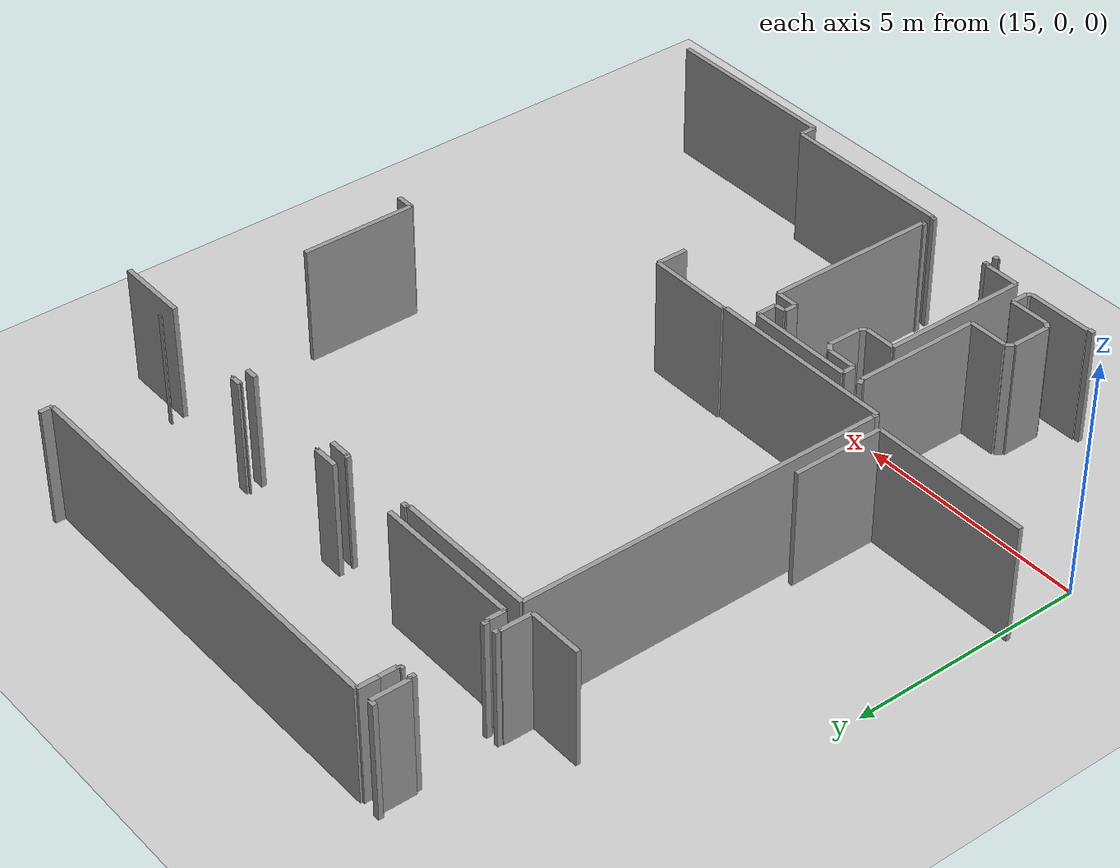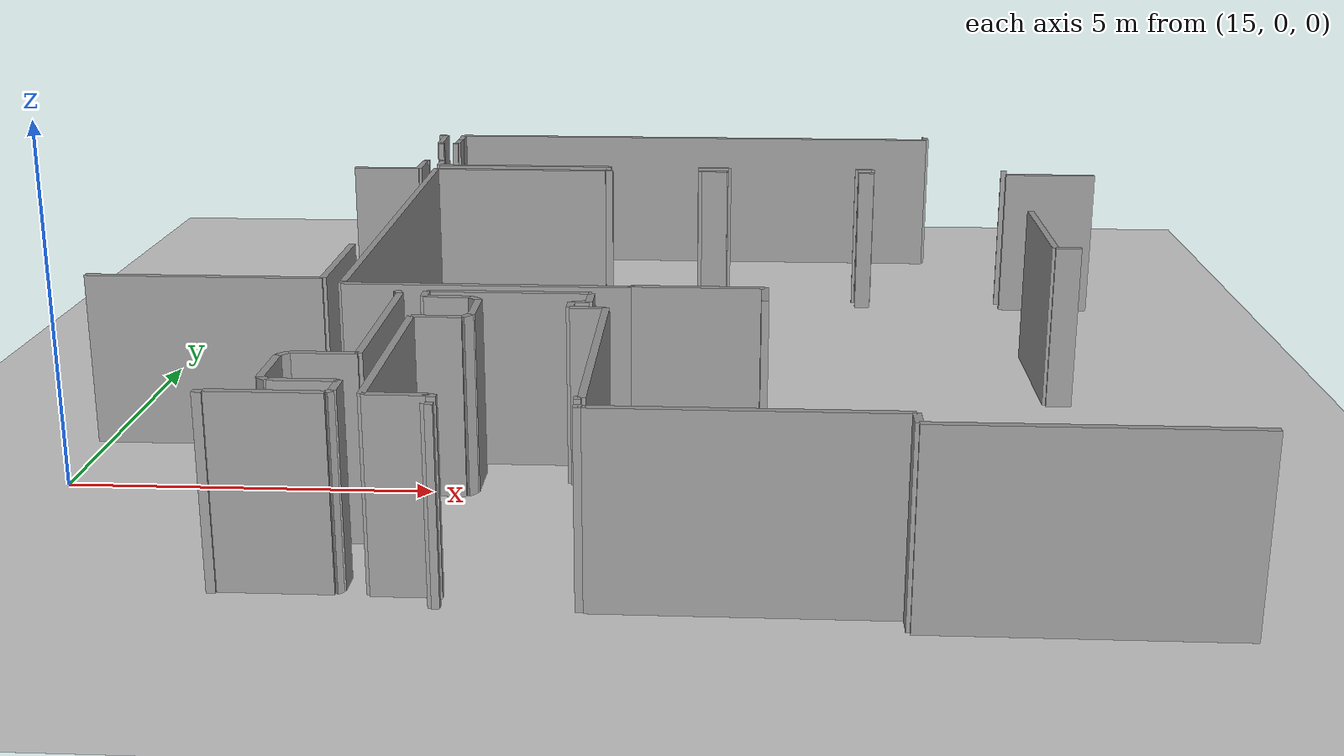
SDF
<sdf version="1.6">
 <world name="default">
  <model name="ground_plane">
   <static>1</static>
   <link name="link">
    <collision name="collision">
     <geometry><plane><normal>0 0 1</normal><size>100 100</size></plane></geometry>
     <surface><friction><ode><mu>100</mu><mu2>50</mu2></ode></friction></surface>
    </collision>
    <visual name="visual">
     <cast_shadows>0</cast_shadows>
     <geometry><plane><normal>0 0 1</normal><size>100 100</size></plane></geometry>
     <material>
      <script><uri>file://media/materials/scripts/gazebo.material</uri><name>Gazebo/Grey</name></script>
     </material>
    </visual>
   </link>
  </model>
  <model name="0510032261_A_40_1_103">
   <static>1</static>
   <link name="Wall_413">
    <collision name="Wall_413_Collision">
     <geometry><box><size>0.13710292249 0.1 2.5</size></box></geometry>
     <pose>0.0685514612452 0 1.25 0 0 0</pose>
    </collision>
    <visual name="Wall_413_Visual">
     <pose>0.0685514612452 0 1.25 0 0 0</pose>
     <geometry><box><size>0.13710292249 0.1 2.5</size></box></geometry>
     <material>
      <script><uri>file://media/materials/scripts/gazebo.material</uri><name>Gazebo/Grey</name></script>
      <ambient>1 1 1 1</ambient>
     </material>
    </visual>
    <pose>67.2287166455 -4.0125794155 0 0 0 0.0</pose>
   </link>
   <link name="Wall_414">
    <collision name="Wall_414_Collision">
     <geometry><box><size>0.778271918679 0.1 2.5</size></box></geometry>
     <pose>0.389135959339 0 1.25 0 0 0</pose>
    </collision>
    <visual name="Wall_414_Visual">
     <pose>0.389135959339 0 1.25 0 0 0</pose>
     <geometry><box><size>0.778271918679 0.1 2.5</size></box></geometry>
     <material>
      <script><uri>file://media/materials/scripts/gazebo.material</uri><name>Gazebo/Grey</name></script>
      <ambient>1 1 1 1</ambient>
     </material>
    </visual>
    <pose>67.365819568 -4.0125794155 0 0 0 -1.57079632679</pose>
   </link>
   <link name="Wall_415">
    <collision name="Wall_415_Collision">
     <geometry><box><size>0.0378653113088 0.1 2.5</size></box></geometry>
     <pose>0.0189326556544 0 1.25 0 0 0</pose>
    </collision>
    <visual name="Wall_415_Visual">
     <pose>0.0189326556544 0 1.25 0 0 0</pose>
     <geometry><box><size>0.0378653113088 0.1 2.5</size></box></geometry>
     <material>
      <script><uri>file://media/materials/scripts/gazebo.material</uri><name>Gazebo/Grey</name></script>
      <ambient>1 1 1 1</ambient>
     </material>
    </visual>
    <pose>67.365819568 -4.79085133418 0 0 0 0.0</pose>
   </link>
   <link name="Wall_416">
    <collision name="Wall_416_Collision">
     <geometry><box><size>0.121855146125 0.1 2.5</size></box></geometry>
     <pose>0.0609275730623 0 1.25 0 0 0</pose>
    </collision>
    <visual name="Wall_416_Visual">
     <pose>0.0609275730623 0 1.25 0 0 0</pose>
     <geometry><box><size>0.121855146125 0.1 2.5</size></box></geometry>
     <material>
      <script><uri>file://media/materials/scripts/gazebo.material</uri><name>Gazebo/Grey</name></script>
      <ambient>1 1 1 1</ambient>
     </material>
    </visual>
    <pose>67.4036848793 -4.79085133418 0 0 0 -1.57079632679</pose>
   </link>
   <link name="Wall_417">
    <collision name="Wall_417_Collision">
     <geometry><box><size>0.104701397713 0.1 2.5</size></box></geometry>
     <pose>0.0523506988564 0 1.25 0 0 0</pose>
    </collision>
    <visual name="Wall_417_Visual">
     <pose>0.0523506988564 0 1.25 0 0 0</pose>
     <geometry><box><size>0.104701397713 0.1 2.5</size></box></geometry>
     <material>
      <script><uri>file://media/materials/scripts/gazebo.material</uri><name>Gazebo/Grey</name></script>
      <ambient>1 1 1 1</ambient>
     </material>
    </visual>
    <pose>67.4036848793 -6.45082592122 0 0 0 -1.57079632679</pose>
   </link>
   <link name="Wall_418">
    <collision name="Wall_418_Collision">
     <geometry><box><size>0.0209656925032 0.1 2.5</size></box></geometry>
     <pose>0.0104828462516 0 1.25 0 0 0</pose>
    </collision>
    <visual name="Wall_418_Visual">
     <pose>0.0104828462516 0 1.25 0 0 0</pose>
     <geometry><box><size>0.0209656925032 0.1 2.5</size></box></geometry>
     <material>
      <script><uri>file://media/materials/scripts/gazebo.material</uri><name>Gazebo/Grey</name></script>
      <ambient>1 1 1 1</ambient>
     </material>
    </visual>
    <pose>67.4036848793 -6.55552731893 0 0 0 3.14159265359</pose>
   </link>
   <link name="Wall_419">
    <collision name="Wall_419_Collision">
     <geometry><box><size>0.673697585769 0.1 2.5</size></box></geometry>
     <pose>0.336848792884 0 1.25 0 0 0</pose>
    </collision>
    <visual name="Wall_419_Visual">
     <pose>0.336848792884 0 1.25 0 0 0</pose>
     <geometry><box><size>0.673697585769 0.1 2.5</size></box></geometry>
     <material>
      <script><uri>file://media/materials/scripts/gazebo.material</uri><name>Gazebo/Grey</name></script>
      <ambient>1 1 1 1</ambient>
     </material>
    </visual>
    <pose>67.3827191868 -6.55552731893 0 0 0 -1.57079632679</pose>
   </link>
   <link name="Wall_420">
    <collision name="Wall_420_Collision">
     <geometry><box><size>1.16734434562 0.1 2.5</size></box></geometry>
     <pose>0.583672172808 0 1.25 0 0 0</pose>
    </collision>
    <visual name="Wall_420_Visual">
     <pose>0.583672172808 0 1.25 0 0 0</pose>
     <geometry><box><size>1.16734434562 0.1 2.5</size></box></geometry>
     <material>
      <script><uri>file://media/materials/scripts/gazebo.material</uri><name>Gazebo/Grey</name></script>
      <ambient>1 1 1 1</ambient>
     </material>
    </visual>
    <pose>67.3827191868 -7.2292249047 0 0 0 3.14159265359</pose>
   </link>
   <link name="Wall_423">
    <collision name="Wall_423_Collision">
     <geometry><box><size>1.93888182973 0.1 2.5</size></box></geometry>
     <pose>0.969440914867 0 1.25 0 0 0</pose>
    </collision>
    <visual name="Wall_423_Visual">
     <pose>0.969440914867 0 1.25 0 0 0</pose>
     <geometry><box><size>1.93888182973 0.1 2.5</size></box></geometry>
     <material>
      <script><uri>file://media/materials/scripts/gazebo.material</uri><name>Gazebo/Grey</name></script>
      <ambient>1 1 1 1</ambient>
     </material>
    </visual>
    <pose>67.3772554003 -12.8893265565 0 0 0 -1.57079632679</pose>
   </link>
   <link name="Wall_424">
    <collision name="Wall_424_Collision">
     <geometry><box><size>3.40127064803 0.1 2.5</size></box></geometry>
     <pose>1.70063532402 0 1.25 0 0 0</pose>
    </collision>
    <visual name="Wall_424_Visual">
     <pose>1.70063532402 0 1.25 0 0 0</pose>
     <geometry><box><size>3.40127064803 0.1 2.5</size></box></geometry>
     <material>
      <script><uri>file://media/materials/scripts/gazebo.material</uri><name>Gazebo/Grey</name></script>
      <ambient>1 1 1 1</ambient>
     </material>
    </visual>
    <pose>67.3772554003 -14.8282083863 0 0 0 3.14159265359</pose>
   </link>
   <link name="Wall_432">
    <collision name="Wall_432_Collision">
     <geometry><box><size>0.142682911237 0.1 2.5</size></box></geometry>
     <pose>0.0713414556187 0 1.25 0 0 0</pose>
    </collision>
    <visual name="Wall_432_Visual">
     <pose>0.0713414556187 0 1.25 0 0 0</pose>
     <geometry><box><size>0.142682911237 0.1 2.5</size></box></geometry>
     <material>
      <script><uri>file://media/materials/scripts/gazebo.material</uri><name>Gazebo/Grey</name></script>
      <ambient>1 1 1 1</ambient>
     </material>
    </visual>
    <pose>68.5369758577 -15.427064803 0 0 0 -1.04458085059</pose>
   </link>
   <link name="Wall_433">
    <collision name="Wall_433_Collision">
     <geometry><box><size>2.69707750953 0.1 2.5</size></box></geometry>
     <pose>1.34853875476 0 1.25 0 0 0</pose>
    </collision>
    <visual name="Wall_433_Visual">
     <pose>1.34853875476 0 1.25 0 0 0</pose>
     <geometry><box><size>2.69707750953 0.1 2.5</size></box></geometry>
     <material>
      <script><uri>file://media/materials/scripts/gazebo.material</uri><name>Gazebo/Grey</name></script>
      <ambient>1 1 1 1</ambient>
     </material>
    </visual>
    <pose>68.6086404066 -15.5504447268 0 0 0 -1.57079632679</pose>
   </link>
   <link name="Wall_434">
    <collision name="Wall_434_Collision">
     <geometry><box><size>0.850190597205 0.1 2.5</size></box></geometry>
     <pose>0.425095298602 0 1.25 0 0 0</pose>
    </collision>
    <visual name="Wall_434_Visual">
     <pose>0.425095298602 0 1.25 0 0 0</pose>
     <geometry><box><size>0.850190597205 0.1 2.5</size></box></geometry>
     <material>
      <script><uri>file://media/materials/scripts/gazebo.material</uri><name>Gazebo/Grey</name></script>
      <ambient>1 1 1 1</ambient>
     </material>
    </visual>
    <pose>68.6086404066 -18.2475222363 0 0 0 3.14159265359</pose>
   </link>
   <link name="Wall_435">
    <collision name="Wall_435_Collision">
     <geometry><box><size>0.168866493976 0.1 2.5</size></box></geometry>
     <pose>0.0844332469879 0 1.25 0 0 0</pose>
    </collision>
    <visual name="Wall_435_Visual">
     <pose>0.0844332469879 0 1.25 0 0 0</pose>
     <geometry><box><size>0.168866493976 0.1 2.5</size></box></geometry>
     <material>
      <script><uri>file://media/materials/scripts/gazebo.material</uri><name>Gazebo/Grey</name></script>
      <ambient>1 1 1 1</ambient>
     </material>
    </visual>
    <pose>67.7584498094 -18.2475222363 0 0 0 -2.29550153311</pose>
   </link>
   <link name="Wall_436">
    <collision name="Wall_436_Collision">
     <geometry><box><size>0.833163913596 0.1 2.5</size></box></geometry>
     <pose>0.416581956798 0 1.25 0 0 0</pose>
    </collision>
    <visual name="Wall_436_Visual">
     <pose>0.416581956798 0 1.25 0 0 0</pose>
     <geometry><box><size>0.833163913596 0.1 2.5</size></box></geometry>
     <material>
      <script><uri>file://media/materials/scripts/gazebo.material</uri><name>Gazebo/Grey</name></script>
      <ambient>1 1 1 1</ambient>
     </material>
    </visual>
    <pose>67.6465057179 -18.3739517154 0 0 0 -1.57079632679</pose>
   </link>
   <link name="Wall_437">
    <collision name="Wall_437_Collision">
     <geometry><box><size>0.134237514811 0.1 2.5</size></box></geometry>
     <pose>0.0671187574056 0 1.25 0 0 0</pose>
    </collision>
    <visual name="Wall_437_Visual">
     <pose>0.0671187574056 0 1.25 0 0 0</pose>
     <geometry><box><size>0.134237514811 0.1 2.5</size></box></geometry>
     <material>
      <script><uri>file://media/materials/scripts/gazebo.material</uri><name>Gazebo/Grey</name></script>
      <ambient>1 1 1 1</ambient>
     </material>
    </visual>
    <pose>67.6465057179 -19.207115629 0 0 0 -0.653156242308</pose>
   </link>
   <link name="Wall_438">
    <collision name="Wall_438_Collision">
     <geometry><box><size>0.844853875477 0.1 2.5</size></box></geometry>
     <pose>0.422426937738 0 1.25 0 0 0</pose>
    </collision>
    <visual name="Wall_438_Visual">
     <pose>0.422426937738 0 1.25 0 0 0</pose>
     <geometry><box><size>0.844853875477 0.1 2.5</size></box></geometry>
     <material>
      <script><uri>file://media/materials/scripts/gazebo.material</uri><name>Gazebo/Grey</name></script>
      <ambient>1 1 1 1</ambient>
     </material>
    </visual>
    <pose>67.7531130877 -19.2886912325 0 0 0 0.0</pose>
   </link>
   <link name="Wall_439">
    <collision name="Wall_439_Collision">
     <geometry><box><size>0.36124523507 0.1 2.5</size></box></geometry>
     <pose>0.180622617535 0 1.25 0 0 0</pose>
    </collision>
    <visual name="Wall_439_Visual">
     <pose>0.180622617535 0 1.25 0 0 0</pose>
     <geometry><box><size>0.36124523507 0.1 2.5</size></box></geometry>
     <material>
      <script><uri>file://media/materials/scripts/gazebo.material</uri><name>Gazebo/Grey</name></script>
      <ambient>1 1 1 1</ambient>
     </material>
    </visual>
    <pose>68.5979669632 -19.2886912325 0 0 0 -1.57079632679</pose>
   </link>
   <link name="Wall_440">
    <collision name="Wall_440_Collision">
     <geometry><box><size>0.091044125953 0.1 2.5</size></box></geometry>
     <pose>0.0455220629765 0 1.25 0 0 0</pose>
    </collision>
    <visual name="Wall_440_Visual">
     <pose>0.0455220629765 0 1.25 0 0 0</pose>
     <geometry><box><size>0.091044125953 0.1 2.5</size></box></geometry>
     <material>
      <script><uri>file://media/materials/scripts/gazebo.material</uri><name>Gazebo/Grey</name></script>
      <ambient>1 1 1 1</ambient>
     </material>
    </visual>
    <pose>68.5979669632 -19.6499364676 0 0 0 -2.33152032796</pose>
   </link>
   <link name="Wall_441">
    <collision name="Wall_441_Collision">
     <geometry><box><size>1.40711562897 0.1 2.5</size></box></geometry>
     <pose>0.703557814485 0 1.25 0 0 0</pose>
    </collision>
    <visual name="Wall_441_Visual">
     <pose>0.703557814485 0 1.25 0 0 0</pose>
     <geometry><box><size>1.40711562897 0.1 2.5</size></box></geometry>
     <material>
      <script><uri>file://media/materials/scripts/gazebo.material</uri><name>Gazebo/Grey</name></script>
      <ambient>1 1 1 1</ambient>
     </material>
    </visual>
    <pose>68.5351969504 -19.7158831004 0 0 0 3.14159265359</pose>
   </link>
   <link name="Wall_443">
    <collision name="Wall_443_Collision">
     <geometry><box><size>0.119313850064 0.1 2.5</size></box></geometry>
     <pose>0.0596569250318 0 1.25 0 0 0</pose>
    </collision>
    <visual name="Wall_443_Visual">
     <pose>0.0596569250318 0 1.25 0 0 0</pose>
     <geometry><box><size>0.119313850064 0.1 2.5</size></box></geometry>
     <material>
      <script><uri>file://media/materials/scripts/gazebo.material</uri><name>Gazebo/Grey</name></script>
      <ambient>1 1 1 1</ambient>
     </material>
    </visual>
    <pose>67.1280813215 -19.7504447268 0 0 0 3.14159265359</pose>
   </link>
   <link name="Wall_449">
    <collision name="Wall_449_Collision">
     <geometry><box><size>3.10470139771 0.1 2.5</size></box></geometry>
     <pose>1.55235069886 0 1.25 0 0 0</pose>
    </collision>
    <visual name="Wall_449_Visual">
     <pose>1.55235069886 0 1.25 0 0 0</pose>
     <geometry><box><size>3.10470139771 0.1 2.5</size></box></geometry>
     <material>
      <script><uri>file://media/materials/scripts/gazebo.material</uri><name>Gazebo/Grey</name></script>
      <ambient>1 1 1 1</ambient>
     </material>
    </visual>
    <pose>68.9555273189 -19.7346886912 0 0 0 1.57079632679</pose>
   </link>
   <link name="Wall_450">
    <collision name="Wall_450_Collision">
     <geometry><box><size>0.667725540025 0.1 2.5</size></box></geometry>
     <pose>0.333862770013 0 1.25 0 0 0</pose>
    </collision>
    <visual name="Wall_450_Visual">
     <pose>0.333862770013 0 1.25 0 0 0</pose>
     <geometry><box><size>0.667725540025 0.1 2.5</size></box></geometry>
     <material>
      <script><uri>file://media/materials/scripts/gazebo.material</uri><name>Gazebo/Grey</name></script>
      <ambient>1 1 1 1</ambient>
     </material>
    </visual>
    <pose>68.9555273189 -16.6299872935 0 0 0 0.0</pose>
   </link>
   <link name="Wall_451">
    <collision name="Wall_451_Collision">
     <geometry><box><size>0.15545016814 0.1 2.5</size></box></geometry>
     <pose>0.0777250840698 0 1.25 0 0 0</pose>
    </collision>
    <visual name="Wall_451_Visual">
     <pose>0.0777250840698 0 1.25 0 0 0</pose>
     <geometry><box><size>0.15545016814 0.1 2.5</size></box></geometry>
     <material>
      <script><uri>file://media/materials/scripts/gazebo.material</uri><name>Gazebo/Grey</name></script>
      <ambient>1 1 1 1</ambient>
     </material>
    </visual>
    <pose>69.623252859 -16.6299872935 0 0 0 0.835125652237</pose>
   </link>
   <link name="Wall_452">
    <collision name="Wall_452_Collision">
     <geometry><box><size>0.703176620076 0.1 2.5</size></box></geometry>
     <pose>0.351588310038 0 1.25 0 0 0</pose>
    </collision>
    <visual name="Wall_452_Visual">
     <pose>0.351588310038 0 1.25 0 0 0</pose>
     <geometry><box><size>0.703176620076 0.1 2.5</size></box></geometry>
     <material>
      <script><uri>file://media/materials/scripts/gazebo.material</uri><name>Gazebo/Grey</name></script>
      <ambient>1 1 1 1</ambient>
     </material>
    </visual>
    <pose>69.7275730623 -16.5147395172 0 0 0 1.57079632679</pose>
   </link>
   <link name="Wall_453">
    <collision name="Wall_453_Collision">
     <geometry><box><size>0.186685224186 0.1 2.5</size></box></geometry>
     <pose>0.0933426120932 0 1.25 0 0 0</pose>
    </collision>
    <visual name="Wall_453_Visual">
     <pose>0.0933426120932 0 1.25 0 0 0</pose>
     <geometry><box><size>0.186685224186 0.1 2.5</size></box></geometry>
     <material>
      <script><uri>file://media/materials/scripts/gazebo.material</uri><name>Gazebo/Grey</name></script>
      <ambient>1 1 1 1</ambient>
     </material>
    </visual>
    <pose>69.7275730623 -15.8115628971 0 0 0 2.39759663652</pose>
   </link>
   <link name="Wall_454">
    <collision name="Wall_454_Collision">
     <geometry><box><size>0.631639135959 0.1 2.5</size></box></geometry>
     <pose>0.31581956798 0 1.25 0 0 0</pose>
    </collision>
    <visual name="Wall_454_Visual">
     <pose>0.31581956798 0 1.25 0 0 0</pose>
     <geometry><box><size>0.631639135959 0.1 2.5</size></box></geometry>
     <material>
      <script><uri>file://media/materials/scripts/gazebo.material</uri><name>Gazebo/Grey</name></script>
      <ambient>1 1 1 1</ambient>
     </material>
    </visual>
    <pose>69.5902160102 -15.685133418 0 0 0 3.14159265359</pose>
   </link>
   <link name="Wall_455">
    <collision name="Wall_455_Collision">
     <geometry><box><size>0.269123252859 0.1 2.5</size></box></geometry>
     <pose>0.134561626429 0 1.25 0 0 0</pose>
    </collision>
    <visual name="Wall_455_Visual">
     <pose>0.134561626429 0 1.25 0 0 0</pose>
     <geometry><box><size>0.269123252859 0.1 2.5</size></box></geometry>
     <material>
      <script><uri>file://media/materials/scripts/gazebo.material</uri><name>Gazebo/Grey</name></script>
      <ambient>1 1 1 1</ambient>
     </material>
    </visual>
    <pose>68.9585768742 -15.685133418 0 0 0 1.57079632679</pose>
   </link>
   <link name="Wall_456">
    <collision name="Wall_456_Collision">
     <geometry><box><size>2.2581956798 0.1 2.5</size></box></geometry>
     <pose>1.1290978399 0 1.25 0 0 0</pose>
    </collision>
    <visual name="Wall_456_Visual">
     <pose>1.1290978399 0 1.25 0 0 0</pose>
     <geometry><box><size>2.2581956798 0.1 2.5</size></box></geometry>
     <material>
      <script><uri>file://media/materials/scripts/gazebo.material</uri><name>Gazebo/Grey</name></script>
      <ambient>1 1 1 1</ambient>
     </material>
    </visual>
    <pose>68.9585768742 -15.4160101652 0 0 0 0.0</pose>
   </link>
   <link name="Wall_457">
    <collision name="Wall_457_Collision">
     <geometry><box><size>0.421092757306 0.1 2.5</size></box></geometry>
     <pose>0.210546378653 0 1.25 0 0 0</pose>
    </collision>
    <visual name="Wall_457_Visual">
     <pose>0.210546378653 0 1.25 0 0 0</pose>
     <geometry><box><size>0.421092757306 0.1 2.5</size></box></geometry>
     <material>
      <script><uri>file://media/materials/scripts/gazebo.material</uri><name>Gazebo/Grey</name></script>
      <ambient>1 1 1 1</ambient>
     </material>
    </visual>
    <pose>71.216772554 -15.4160101652 0 0 0 -1.57079632679</pose>
   </link>
   <link name="Wall_458">
    <collision name="Wall_458_Collision">
     <geometry><box><size>0.235269258492 0.1 2.5</size></box></geometry>
     <pose>0.117634629246 0 1.25 0 0 0</pose>
    </collision>
    <visual name="Wall_458_Visual">
     <pose>0.117634629246 0 1.25 0 0 0</pose>
     <geometry><box><size>0.235269258492 0.1 2.5</size></box></geometry>
     <material>
      <script><uri>file://media/materials/scripts/gazebo.material</uri><name>Gazebo/Grey</name></script>
      <ambient>1 1 1 1</ambient>
     </material>
    </visual>
    <pose>71.216772554 -15.8371029225 0 0 0 -3.03988187152</pose>
   </link>
   <link name="Wall_459">
    <collision name="Wall_459_Collision">
     <geometry><box><size>0.262770012706 0.1 2.5</size></box></geometry>
     <pose>0.131385006353 0 1.25 0 0 0</pose>
    </collision>
    <visual name="Wall_459_Visual">
     <pose>0.131385006353 0 1.25 0 0 0</pose>
     <geometry><box><size>0.262770012706 0.1 2.5</size></box></geometry>
     <material>
      <script><uri>file://media/materials/scripts/gazebo.material</uri><name>Gazebo/Grey</name></script>
      <ambient>1 1 1 1</ambient>
     </material>
    </visual>
    <pose>70.9827191868 -15.8609911055 0 0 0 -1.57079632679</pose>
   </link>
   <link name="Wall_460">
    <collision name="Wall_460_Collision">
     <geometry><box><size>0.482465057179 0.1 2.5</size></box></geometry>
     <pose>0.24123252859 0 1.25 0 0 0</pose>
    </collision>
    <visual name="Wall_460_Visual">
     <pose>0.24123252859 0 1.25 0 0 0</pose>
     <geometry><box><size>0.482465057179 0.1 2.5</size></box></geometry>
     <material>
      <script><uri>file://media/materials/scripts/gazebo.material</uri><name>Gazebo/Grey</name></script>
      <ambient>1 1 1 1</ambient>
     </material>
    </visual>
    <pose>70.9827191868 -16.1237611182 0 0 0 0.0</pose>
   </link>
   <link name="Wall_461">
    <collision name="Wall_461_Collision">
     <geometry><box><size>3.63989834816 0.1 2.5</size></box></geometry>
     <pose>1.81994917408 0 1.25 0 0 0</pose>
    </collision>
    <visual name="Wall_461_Visual">
     <pose>1.81994917408 0 1.25 0 0 0</pose>
     <geometry><box><size>3.63989834816 0.1 2.5</size></box></geometry>
     <material>
      <script><uri>file://media/materials/scripts/gazebo.material</uri><name>Gazebo/Grey</name></script>
      <ambient>1 1 1 1</ambient>
     </material>
    </visual>
    <pose>71.465184244 -16.1237611182 0 0 0 -1.57079632679</pose>
   </link>
   <link name="Wall_462">
    <collision name="Wall_462_Collision">
     <geometry><box><size>0.0909783989835 0.1 2.5</size></box></geometry>
     <pose>0.0454891994917 0 1.25 0 0 0</pose>
    </collision>
    <visual name="Wall_462_Visual">
     <pose>0.0454891994917 0 1.25 0 0 0</pose>
     <geometry><box><size>0.0909783989835 0.1 2.5</size></box></geometry>
     <material>
      <script><uri>file://media/materials/scripts/gazebo.material</uri><name>Gazebo/Grey</name></script>
      <ambient>1 1 1 1</ambient>
     </material>
    </visual>
    <pose>71.465184244 -19.7636594663 0 0 0 3.14159265359</pose>
   </link>
   <link name="Wall_463">
    <collision name="Wall_463_Collision">
     <geometry><box><size>0.113087674714 0.1 2.5</size></box></geometry>
     <pose>0.0565438373571 0 1.25 0 0 0</pose>
    </collision>
    <visual name="Wall_463_Visual">
     <pose>0.0565438373571 0 1.25 0 0 0</pose>
     <geometry><box><size>0.113087674714 0.1 2.5</size></box></geometry>
     <material>
      <script><uri>file://media/materials/scripts/gazebo.material</uri><name>Gazebo/Grey</name></script>
      <ambient>1 1 1 1</ambient>
     </material>
    </visual>
    <pose>69.8198221093 -19.7636594663 0 0 0 3.14159265359</pose>
   </link>
   <link name="Wall_464">
    <collision name="Wall_464_Collision">
     <geometry><box><size>0.0257941550191 0.1 2.5</size></box></geometry>
     <pose>0.0128970775095 0 1.25 0 0 0</pose>
    </collision>
    <visual name="Wall_464_Visual">
     <pose>0.0128970775095 0 1.25 0 0 0</pose>
     <geometry><box><size>0.0257941550191 0.1 2.5</size></box></geometry>
     <material>
      <script><uri>file://media/materials/scripts/gazebo.material</uri><name>Gazebo/Grey</name></script>
      <ambient>1 1 1 1</ambient>
     </material>
    </visual>
    <pose>69.7067344346 -19.7636594663 0 0 0 1.57079632679</pose>
   </link>
   <link name="Wall_465">
    <collision name="Wall_465_Collision">
     <geometry><box><size>0.751213832066 0.1 2.5</size></box></geometry>
     <pose>0.375606916033 0 1.25 0 0 0</pose>
    </collision>
    <visual name="Wall_465_Visual">
     <pose>0.375606916033 0 1.25 0 0 0</pose>
     <geometry><box><size>0.751213832066 0.1 2.5</size></box></geometry>
     <material>
      <script><uri>file://media/materials/scripts/gazebo.material</uri><name>Gazebo/Grey</name></script>
      <ambient>1 1 1 1</ambient>
     </material>
    </visual>
    <pose>69.7067344346 -19.7378653113 0 0 0 3.13736399138</pose>
   </link>
   <link name="Wall_568">
    <collision name="Wall_568_Collision">
     <geometry><box><size>0.0165184243965 0.1 2.5</size></box></geometry>
     <pose>0.00825921219823 0 1.25 0 0 0</pose>
    </collision>
    <visual name="Wall_568_Visual">
     <pose>0.00825921219823 0 1.25 0 0 0</pose>
     <geometry><box><size>0.0165184243965 0.1 2.5</size></box></geometry>
     <material>
      <script><uri>file://media/materials/scripts/gazebo.material</uri><name>Gazebo/Grey</name></script>
      <ambient>1 1 1 1</ambient>
     </material>
    </visual>
    <pose>69.7311308767 -20.0523506989 0 0 0 1.57079632679</pose>
   </link>
   <link name="Wall_569">
    <collision name="Wall_569_Collision">
     <geometry><box><size>0.0970775095299 0.1 2.5</size></box></geometry>
     <pose>0.0485387547649 0 1.25 0 0 0</pose>
    </collision>
    <visual name="Wall_569_Visual">
     <pose>0.0485387547649 0 1.25 0 0 0</pose>
     <geometry><box><size>0.0970775095299 0.1 2.5</size></box></geometry>
     <material>
      <script><uri>file://media/materials/scripts/gazebo.material</uri><name>Gazebo/Grey</name></script>
      <ambient>1 1 1 1</ambient>
     </material>
    </visual>
    <pose>69.7311308767 -20.0358322745 0 0 0 0.0</pose>
   </link>
   <link name="Wall_570">
    <collision name="Wall_570_Collision">
     <geometry><box><size>0.0973316391359 0.1 2.5</size></box></geometry>
     <pose>0.048665819568 0 1.25 0 0 0</pose>
    </collision>
    <visual name="Wall_570_Visual">
     <pose>0.048665819568 0 1.25 0 0 0</pose>
     <geometry><box><size>0.0973316391359 0.1 2.5</size></box></geometry>
     <material>
      <script><uri>file://media/materials/scripts/gazebo.material</uri><name>Gazebo/Grey</name></script>
      <ambient>1 1 1 1</ambient>
     </material>
    </visual>
    <pose>71.3902160102 -20.0358322745 0 0 0 0.0</pose>
   </link>
   <link name="Wall_571">
    <collision name="Wall_571_Collision">
     <geometry><box><size>0.0191867852605 0.1 2.5</size></box></geometry>
     <pose>0.00959339263024 0 1.25 0 0 0</pose>
    </collision>
    <visual name="Wall_571_Visual">
     <pose>0.00959339263024 0 1.25 0 0 0</pose>
     <geometry><box><size>0.0191867852605 0.1 2.5</size></box></geometry>
     <material>
      <script><uri>file://media/materials/scripts/gazebo.material</uri><name>Gazebo/Grey</name></script>
      <ambient>1 1 1 1</ambient>
     </material>
    </visual>
    <pose>71.4875476493 -20.0358322745 0 0 0 -1.57079632679</pose>
   </link>
   <link name="Wall_572">
    <collision name="Wall_572_Collision">
     <geometry><box><size>3.70203303685 0.1 2.5</size></box></geometry>
     <pose>1.85101651842 0 1.25 0 0 0</pose>
    </collision>
    <visual name="Wall_572_Visual">
     <pose>1.85101651842 0 1.25 0 0 0</pose>
     <geometry><box><size>3.70203303685 0.1 2.5</size></box></geometry>
     <material>
      <script><uri>file://media/materials/scripts/gazebo.material</uri><name>Gazebo/Grey</name></script>
      <ambient>1 1 1 1</ambient>
     </material>
    </visual>
    <pose>71.4875476493 -20.0550190597 0 0 0 0.0</pose>
   </link>
   <link name="Wall_573">
    <collision name="Wall_573_Collision">
     <geometry><box><size>0.336848792884 0.1 2.5</size></box></geometry>
     <pose>0.168424396442 0 1.25 0 0 0</pose>
    </collision>
    <visual name="Wall_573_Visual">
     <pose>0.168424396442 0 1.25 0 0 0</pose>
     <geometry><box><size>0.336848792884 0.1 2.5</size></box></geometry>
     <material>
      <script><uri>file://media/materials/scripts/gazebo.material</uri><name>Gazebo/Grey</name></script>
      <ambient>1 1 1 1</ambient>
     </material>
    </visual>
    <pose>75.1895806861 -20.0550190597 0 0 0 -1.57079632679</pose>
   </link>
   <link name="Wall_574">
    <collision name="Wall_574_Collision">
     <geometry><box><size>3.84930114358 0.1 2.5</size></box></geometry>
     <pose>1.92465057179 0 1.25 0 0 0</pose>
    </collision>
    <visual name="Wall_574_Visual">
     <pose>1.92465057179 0 1.25 0 0 0</pose>
     <geometry><box><size>3.84930114358 0.1 2.5</size></box></geometry>
     <material>
      <script><uri>file://media/materials/scripts/gazebo.material</uri><name>Gazebo/Grey</name></script>
      <ambient>1 1 1 1</ambient>
     </material>
    </visual>
    <pose>75.1895806861 -20.3918678526 0 0 0 0.0</pose>
   </link>
   <link name="Wall_593">
    <collision name="Wall_593_Collision">
     <geometry><box><size>0.429606099111 0.1 2.5</size></box></geometry>
     <pose>0.214803049555 0 1.25 0 0 0</pose>
    </collision>
    <visual name="Wall_593_Visual">
     <pose>0.214803049555 0 1.25 0 0 0</pose>
     <geometry><box><size>0.429606099111 0.1 2.5</size></box></geometry>
     <material>
      <script><uri>file://media/materials/scripts/gazebo.material</uri><name>Gazebo/Grey</name></script>
      <ambient>1 1 1 1</ambient>
     </material>
    </visual>
    <pose>67.7191867853 -4.43290978399 0 0 0 1.57079632679</pose>
   </link>
   <link name="Wall_594">
    <collision name="Wall_594_Collision">
     <geometry><box><size>9.12947903431 0.1 2.5</size></box></geometry>
     <pose>4.56473951715 0 1.25 0 0 0</pose>
    </collision>
    <visual name="Wall_594_Visual">
     <pose>4.56473951715 0 1.25 0 0 0</pose>
     <geometry><box><size>9.12947903431 0.1 2.5</size></box></geometry>
     <material>
      <script><uri>file://media/materials/scripts/gazebo.material</uri><name>Gazebo/Grey</name></script>
      <ambient>1 1 1 1</ambient>
     </material>
    </visual>
    <pose>67.7191867853 -4.00330368488 0 0 0 0.0</pose>
   </link>
   <link name="Wall_595">
    <collision name="Wall_595_Collision">
     <geometry><box><size>0.256416772554 0.1 2.5</size></box></geometry>
     <pose>0.128208386277 0 1.25 0 0 0</pose>
    </collision>
    <visual name="Wall_595_Visual">
     <pose>0.128208386277 0 1.25 0 0 0</pose>
     <geometry><box><size>0.256416772554 0.1 2.5</size></box></geometry>
     <material>
      <script><uri>file://media/materials/scripts/gazebo.material</uri><name>Gazebo/Grey</name></script>
      <ambient>1 1 1 1</ambient>
     </material>
    </visual>
    <pose>76.8486658196 -4.00330368488 0 0 0 1.57079632679</pose>
   </link>
   <link name="Wall_605">
    <collision name="Wall_605_Collision">
     <geometry><box><size>0.0277001270648 0.1 2.5</size></box></geometry>
     <pose>0.0138500635324 0 1.25 0 0 0</pose>
    </collision>
    <visual name="Wall_605_Visual">
     <pose>0.0138500635324 0 1.25 0 0 0</pose>
     <geometry><box><size>0.0277001270648 0.1 2.5</size></box></geometry>
     <material>
      <script><uri>file://media/materials/scripts/gazebo.material</uri><name>Gazebo/Grey</name></script>
      <ambient>1 1 1 1</ambient>
     </material>
    </visual>
    <pose>77.9579415502 -6.90914866582 0 0 0 -1.57079632679</pose>
   </link>
   <link name="Wall_606">
    <collision name="Wall_606_Collision">
     <geometry><box><size>0.0200762388818 0.1 2.5</size></box></geometry>
     <pose>0.0100381194409 0 1.25 0 0 0</pose>
    </collision>
    <visual name="Wall_606_Visual">
     <pose>0.0100381194409 0 1.25 0 0 0</pose>
     <geometry><box><size>0.0200762388818 0.1 2.5</size></box></geometry>
     <material>
      <script><uri>file://media/materials/scripts/gazebo.material</uri><name>Gazebo/Grey</name></script>
      <ambient>1 1 1 1</ambient>
     </material>
    </visual>
    <pose>75.5891994917 -6.93684879288 0 0 0 1.57079632679</pose>
   </link>
   <link name="Wall_607">
    <collision name="Wall_607_Collision">
     <geometry><box><size>0.245616264295 0.1 2.5</size></box></geometry>
     <pose>0.122808132147 0 1.25 0 0 0</pose>
    </collision>
    <visual name="Wall_607_Visual">
     <pose>0.122808132147 0 1.25 0 0 0</pose>
     <geometry><box><size>0.245616264295 0.1 2.5</size></box></geometry>
     <material>
      <script><uri>file://media/materials/scripts/gazebo.material</uri><name>Gazebo/Grey</name></script>
      <ambient>1 1 1 1</ambient>
     </material>
    </visual>
    <pose>75.5891994917 -6.916772554 0 0 0 3.14159265359</pose>
   </link>
   <link name="Wall_608">
    <collision name="Wall_608_Collision">
     <geometry><box><size>0.0252858958069 0.1 2.5</size></box></geometry>
     <pose>0.0126429479034 0 1.25 0 0 0</pose>
    </collision>
    <visual name="Wall_608_Visual">
     <pose>0.0126429479034 0 1.25 0 0 0</pose>
     <geometry><box><size>0.0252858958069 0.1 2.5</size></box></geometry>
     <material>
      <script><uri>file://media/materials/scripts/gazebo.material</uri><name>Gazebo/Grey</name></script>
      <ambient>1 1 1 1</ambient>
     </material>
    </visual>
    <pose>75.3435832274 -6.916772554 0 0 0 -1.57079632679</pose>
   </link>
   <link name="Wall_609">
    <collision name="Wall_609_Collision">
     <geometry><box><size>0.0219822109276 0.1 2.5</size></box></geometry>
     <pose>0.0109911054638 0 1.25 0 0 0</pose>
    </collision>
    <visual name="Wall_609_Visual">
     <pose>0.0109911054638 0 1.25 0 0 0</pose>
     <geometry><box><size>0.0219822109276 0.1 2.5</size></box></geometry>
     <material>
      <script><uri>file://media/materials/scripts/gazebo.material</uri><name>Gazebo/Grey</name></script>
      <ambient>1 1 1 1</ambient>
     </material>
    </visual>
    <pose>72.9983481576 -6.94205844981 0 0 0 1.57079632679</pose>
   </link>
   <link name="Wall_610">
    <collision name="Wall_610_Collision">
     <geometry><box><size>0.549682337992 0.1 2.5</size></box></geometry>
     <pose>0.274841168996 0 1.25 0 0 0</pose>
    </collision>
    <visual name="Wall_610_Visual">
     <pose>0.274841168996 0 1.25 0 0 0</pose>
     <geometry><box><size>0.549682337992 0.1 2.5</size></box></geometry>
     <material>
      <script><uri>file://media/materials/scripts/gazebo.material</uri><name>Gazebo/Grey</name></script>
      <ambient>1 1 1 1</ambient>
     </material>
    </visual>
    <pose>72.9983481576 -6.92007623888 0 0 0 3.14159265359</pose>
   </link>
   <link name="Wall_611">
    <collision name="Wall_611_Collision">
     <geometry><box><size>3.15743329098 0.1 2.5</size></box></geometry>
     <pose>1.57871664549 0 1.25 0 0 0</pose>
    </collision>
    <visual name="Wall_611_Visual">
     <pose>1.57871664549 0 1.25 0 0 0</pose>
     <geometry><box><size>3.15743329098 0.1 2.5</size></box></geometry>
     <material>
      <script><uri>file://media/materials/scripts/gazebo.material</uri><name>Gazebo/Grey</name></script>
      <ambient>1 1 1 1</ambient>
     </material>
    </visual>
    <pose>70.8688691233 -6.92007623888 0 0 0 3.14159265359</pose>
   </link>
   <link name="Wall_612">
    <collision name="Wall_612_Collision">
     <geometry><box><size>0.375349428208 0.1 2.5</size></box></geometry>
     <pose>0.187674714104 0 1.25 0 0 0</pose>
    </collision>
    <visual name="Wall_612_Visual">
     <pose>0.187674714104 0 1.25 0 0 0</pose>
     <geometry><box><size>0.375349428208 0.1 2.5</size></box></geometry>
     <material>
      <script><uri>file://media/materials/scripts/gazebo.material</uri><name>Gazebo/Grey</name></script>
      <ambient>1 1 1 1</ambient>
     </material>
    </visual>
    <pose>67.7114358323 -6.92007623888 0 0 0 1.57079632679</pose>
   </link>
   <link name="Wall_613">
    <collision name="Wall_613_Collision">
     <geometry><box><size>0.0360864040661 0.1 2.5</size></box></geometry>
     <pose>0.018043202033 0 1.25 0 0 0</pose>
    </collision>
    <visual name="Wall_613_Visual">
     <pose>0.018043202033 0 1.25 0 0 0</pose>
     <geometry><box><size>0.0360864040661 0.1 2.5</size></box></geometry>
     <material>
      <script><uri>file://media/materials/scripts/gazebo.material</uri><name>Gazebo/Grey</name></script>
      <ambient>1 1 1 1</ambient>
     </material>
    </visual>
    <pose>67.7114358323 -6.54472681067 0 0 0 3.14159265359</pose>
   </link>
   <link name="Wall_614">
    <collision name="Wall_614_Collision">
     <geometry><box><size>0.115628970775 0.1 2.5</size></box></geometry>
     <pose>0.0578144853875 0 1.25 0 0 0</pose>
    </collision>
    <visual name="Wall_614_Visual">
     <pose>0.0578144853875 0 1.25 0 0 0</pose>
     <geometry><box><size>0.115628970775 0.1 2.5</size></box></geometry>
     <material>
      <script><uri>file://media/materials/scripts/gazebo.material</uri><name>Gazebo/Grey</name></script>
      <ambient>1 1 1 1</ambient>
     </material>
    </visual>
    <pose>67.6753494282 -6.54472681067 0 0 0 1.57079632679</pose>
   </link>
   <link name="Wall_615">
    <collision name="Wall_615_Collision">
     <geometry><box><size>0.0736975857687 0.1 2.5</size></box></geometry>
     <pose>0.0368487928844 0 1.25 0 0 0</pose>
    </collision>
    <visual name="Wall_615_Visual">
     <pose>0.0368487928844 0 1.25 0 0 0</pose>
     <geometry><box><size>0.0736975857687 0.1 2.5</size></box></geometry>
     <material>
      <script><uri>file://media/materials/scripts/gazebo.material</uri><name>Gazebo/Grey</name></script>
      <ambient>1 1 1 1</ambient>
     </material>
    </visual>
    <pose>67.6753494282 -4.87878017789 0 0 0 1.57079632679</pose>
   </link>
   <link name="Wall_616">
    <collision name="Wall_616_Collision">
     <geometry><box><size>0.0405336721728 0.1 2.5</size></box></geometry>
     <pose>0.0202668360864 0 1.25 0 0 0</pose>
    </collision>
    <visual name="Wall_616_Visual">
     <pose>0.0202668360864 0 1.25 0 0 0</pose>
     <geometry><box><size>0.0405336721728 0.1 2.5</size></box></geometry>
     <material>
      <script><uri>file://media/materials/scripts/gazebo.material</uri><name>Gazebo/Grey</name></script>
      <ambient>1 1 1 1</ambient>
     </material>
    </visual>
    <pose>67.6753494282 -4.80508259212 0 0 0 0.0</pose>
   </link>
   <link name="Wall_617">
    <collision name="Wall_617_Collision">
     <geometry><box><size>0.372187470835 0.1 2.5</size></box></geometry>
     <pose>0.186093735418 0 1.25 0 0 0</pose>
    </collision>
    <visual name="Wall_617_Visual">
     <pose>0.186093735418 0 1.25 0 0 0</pose>
     <geometry><box><size>0.372187470835 0.1 2.5</size></box></geometry>
     <material>
      <script><uri>file://media/materials/scripts/gazebo.material</uri><name>Gazebo/Grey</name></script>
      <ambient>1 1 1 1</ambient>
     </material>
    </visual>
    <pose>67.7158831004 -4.80508259212 0 0 0 1.56191981019</pose>
   </link>
   <link name="Wall_618">
    <collision name="Wall_618_Collision">
     <geometry><box><size>7.71410419314 0.1 2.5</size></box></geometry>
     <pose>3.85705209657 0 1.25 0 0 0</pose>
    </collision>
    <visual name="Wall_618_Visual">
     <pose>3.85705209657 0 1.25 0 0 0</pose>
     <geometry><box><size>7.71410419314 0.1 2.5</size></box></geometry>
     <material>
      <script><uri>file://media/materials/scripts/gazebo.material</uri><name>Gazebo/Grey</name></script>
      <ambient>1 1 1 1</ambient>
     </material>
    </visual>
    <pose>67.7062261753 -14.9724269377 0 0 0 1.57079632679</pose>
   </link>
   <link name="Wall_619">
    <collision name="Wall_619_Collision">
     <geometry><box><size>3.07954256671 0.1 2.5</size></box></geometry>
     <pose>1.53977128335 0 1.25 0 0 0</pose>
    </collision>
    <visual name="Wall_619_Visual">
     <pose>1.53977128335 0 1.25 0 0 0</pose>
     <geometry><box><size>3.07954256671 0.1 2.5</size></box></geometry>
     <material>
      <script><uri>file://media/materials/scripts/gazebo.material</uri><name>Gazebo/Grey</name></script>
      <ambient>1 1 1 1</ambient>
     </material>
    </visual>
    <pose>67.7062261753 -7.2583227446 0 0 0 0.0</pose>
   </link>
   <link name="Wall_620">
    <collision name="Wall_620_Collision">
     <geometry><box><size>0.0362134688691 0.1 2.5</size></box></geometry>
     <pose>0.0181067344346 0 1.25 0 0 0</pose>
    </collision>
    <visual name="Wall_620_Visual">
     <pose>0.0181067344346 0 1.25 0 0 0</pose>
     <geometry><box><size>0.0362134688691 0.1 2.5</size></box></geometry>
     <material>
      <script><uri>file://media/materials/scripts/gazebo.material</uri><name>Gazebo/Grey</name></script>
      <ambient>1 1 1 1</ambient>
     </material>
    </visual>
    <pose>70.7857687421 -7.2583227446 0 0 0 1.57079632679</pose>
   </link>
   <link name="Wall_621">
    <collision name="Wall_621_Collision">
     <geometry><box><size>0.12833545108 0.1 2.5</size></box></geometry>
     <pose>0.06416772554 0 1.25 0 0 0</pose>
    </collision>
    <visual name="Wall_621_Visual">
     <pose>0.06416772554 0 1.25 0 0 0</pose>
     <geometry><box><size>0.12833545108 0.1 2.5</size></box></geometry>
     <material>
      <script><uri>file://media/materials/scripts/gazebo.material</uri><name>Gazebo/Grey</name></script>
      <ambient>1 1 1 1</ambient>
     </material>
    </visual>
    <pose>70.7857687421 -7.22210927573 0 0 0 0.0</pose>
   </link>
   <link name="Wall_622">
    <collision name="Wall_622_Collision">
     <geometry><box><size>0.06416772554 0.1 2.5</size></box></geometry>
     <pose>0.03208386277 0 1.25 0 0 0</pose>
    </collision>
    <visual name="Wall_622_Visual">
     <pose>0.03208386277 0 1.25 0 0 0</pose>
     <geometry><box><size>0.06416772554 0.1 2.5</size></box></geometry>
     <material>
      <script><uri>file://media/materials/scripts/gazebo.material</uri><name>Gazebo/Grey</name></script>
      <ambient>1 1 1 1</ambient>
     </material>
    </visual>
    <pose>72.4636594663 -7.22210927573 0 0 0 0.0</pose>
   </link>
   <link name="Wall_623">
    <collision name="Wall_623_Collision">
     <geometry><box><size>0.0174078780178 0.1 2.5</size></box></geometry>
     <pose>0.00870393900889 0 1.25 0 0 0</pose>
    </collision>
    <visual name="Wall_623_Visual">
     <pose>0.00870393900889 0 1.25 0 0 0</pose>
     <geometry><box><size>0.0174078780178 0.1 2.5</size></box></geometry>
     <material>
      <script><uri>file://media/materials/scripts/gazebo.material</uri><name>Gazebo/Grey</name></script>
      <ambient>1 1 1 1</ambient>
     </material>
    </visual>
    <pose>72.5278271919 -7.22210927573 0 0 0 -1.57079632679</pose>
   </link>
   <link name="Wall_624">
    <collision name="Wall_624_Collision">
     <geometry><box><size>0.453621346887 0.1 2.5</size></box></geometry>
     <pose>0.226810673443 0 1.25 0 0 0</pose>
    </collision>
    <visual name="Wall_624_Visual">
     <pose>0.226810673443 0 1.25 0 0 0</pose>
     <geometry><box><size>0.453621346887 0.1 2.5</size></box></geometry>
     <material>
      <script><uri>file://media/materials/scripts/gazebo.material</uri><name>Gazebo/Grey</name></script>
      <ambient>1 1 1 1</ambient>
     </material>
    </visual>
    <pose>72.5278271919 -7.23951715375 0 0 0 0.0</pose>
   </link>
   <link name="Wall_625">
    <collision name="Wall_625_Collision">
     <geometry><box><size>0.264294790343 0.1 2.5</size></box></geometry>
     <pose>0.132147395172 0 1.25 0 0 0</pose>
    </collision>
    <visual name="Wall_625_Visual">
     <pose>0.132147395172 0 1.25 0 0 0</pose>
     <geometry><box><size>0.264294790343 0.1 2.5</size></box></geometry>
     <material>
      <script><uri>file://media/materials/scripts/gazebo.material</uri><name>Gazebo/Grey</name></script>
      <ambient>1 1 1 1</ambient>
     </material>
    </visual>
    <pose>75.3401524778 -7.23951715375 0 0 0 0.0</pose>
   </link>
   <link name="Wall_626">
    <collision name="Wall_626_Collision">
     <geometry><box><size>1.56111817027 0.1 2.5</size></box></geometry>
     <pose>0.780559085133 0 1.25 0 0 0</pose>
    </collision>
    <visual name="Wall_626_Visual">
     <pose>0.780559085133 0 1.25 0 0 0</pose>
     <geometry><box><size>1.56111817027 0.1 2.5</size></box></geometry>
     <material>
      <script><uri>file://media/materials/scripts/gazebo.material</uri><name>Gazebo/Grey</name></script>
      <ambient>1 1 1 1</ambient>
     </material>
    </visual>
    <pose>77.9545108005 -7.23951715375 0 0 0 0.0</pose>
   </link>
   <link name="Wall_629">
    <collision name="Wall_629_Collision">
     <geometry><box><size>2.4459974587 0.1 2.5</size></box></geometry>
     <pose>1.22299872935 0 1.25 0 0 0</pose>
    </collision>
    <visual name="Wall_629_Visual">
     <pose>1.22299872935 0 1.25 0 0 0</pose>
     <geometry><box><size>2.4459974587 0.1 2.5</size></box></geometry>
     <material>
      <script><uri>file://media/materials/scripts/gazebo.material</uri><name>Gazebo/Grey</name></script>
      <ambient>1 1 1 1</ambient>
     </material>
    </visual>
    <pose>77.9514612452 -10.1017789072 0 0 0 -1.57079632679</pose>
   </link>
   <link name="Wall_630">
    <collision name="Wall_630_Collision">
     <geometry><box><size>0.382846251588 0.1 2.5</size></box></geometry>
     <pose>0.191423125794 0 1.25 0 0 0</pose>
    </collision>
    <visual name="Wall_630_Visual">
     <pose>0.191423125794 0 1.25 0 0 0</pose>
     <geometry><box><size>0.382846251588 0.1 2.5</size></box></geometry>
     <material>
      <script><uri>file://media/materials/scripts/gazebo.material</uri><name>Gazebo/Grey</name></script>
      <ambient>1 1 1 1</ambient>
     </material>
    </visual>
    <pose>77.9514612452 -12.5477763659 0 0 0 0.0</pose>
   </link>
   <link name="Wall_633">
    <collision name="Wall_633_Collision">
     <geometry><box><size>0.658576874206 0.1 2.5</size></box></geometry>
     <pose>0.329288437103 0 1.25 0 0 0</pose>
    </collision>
    <visual name="Wall_633_Visual">
     <pose>0.329288437103 0 1.25 0 0 0</pose>
     <geometry><box><size>0.658576874206 0.1 2.5</size></box></geometry>
     <material>
      <script><uri>file://media/materials/scripts/gazebo.material</uri><name>Gazebo/Grey</name></script>
      <ambient>1 1 1 1</ambient>
     </material>
    </visual>
    <pose>73.5770012706 -15.6890724269 0 0 0 1.57079632679</pose>
   </link>
   <link name="Wall_634">
    <collision name="Wall_634_Collision">
     <geometry><box><size>1.84485387548 0.1 2.5</size></box></geometry>
     <pose>0.922426937738 0 1.25 0 0 0</pose>
    </collision>
    <visual name="Wall_634_Visual">
     <pose>0.922426937738 0 1.25 0 0 0</pose>
     <geometry><box><size>1.84485387548 0.1 2.5</size></box></geometry>
     <material>
      <script><uri>file://media/materials/scripts/gazebo.material</uri><name>Gazebo/Grey</name></script>
      <ambient>1 1 1 1</ambient>
     </material>
    </visual>
    <pose>73.5770012706 -15.0304955527 0 0 0 3.14159265359</pose>
   </link>
   <link name="Wall_635">
    <collision name="Wall_635_Collision">
     <geometry><box><size>0.04625158831 0.1 2.5</size></box></geometry>
     <pose>0.023125794155 0 1.25 0 0 0</pose>
    </collision>
    <visual name="Wall_635_Visual">
     <pose>0.023125794155 0 1.25 0 0 0</pose>
     <geometry><box><size>0.04625158831 0.1 2.5</size></box></geometry>
     <material>
      <script><uri>file://media/materials/scripts/gazebo.material</uri><name>Gazebo/Grey</name></script>
      <ambient>1 1 1 1</ambient>
     </material>
    </visual>
    <pose>71.7321473952 -15.0304955527 0 0 0 -1.57079632679</pose>
   </link>
   <link name="Wall_636">
    <collision name="Wall_636_Collision">
     <geometry><box><size>4.03532401525 0.1 2.5</size></box></geometry>
     <pose>2.01766200762 0 1.25 0 0 0</pose>
    </collision>
    <visual name="Wall_636_Visual">
     <pose>2.01766200762 0 1.25 0 0 0</pose>
     <geometry><box><size>4.03532401525 0.1 2.5</size></box></geometry>
     <material>
      <script><uri>file://media/materials/scripts/gazebo.material</uri><name>Gazebo/Grey</name></script>
      <ambient>1 1 1 1</ambient>
     </material>
    </visual>
    <pose>71.7321473952 -15.076747141 0 0 0 3.14159265359</pose>
   </link>
   <link name="Wall_637">
    <collision name="Wall_637_Collision">
     <geometry><box><size>0.104743101821 0.1 2.5</size></box></geometry>
     <pose>0.0523715509106 0 1.25 0 0 0</pose>
    </collision>
    <visual name="Wall_637_Visual">
     <pose>0.0523715509106 0 1.25 0 0 0</pose>
     <geometry><box><size>0.104743101821 0.1 2.5</size></box></geometry>
     <material>
      <script><uri>file://media/materials/scripts/gazebo.material</uri><name>Gazebo/Grey</name></script>
      <ambient>1 1 1 1</ambient>
     </material>
    </visual>
    <pose>67.6968233799 -15.076747141 0 0 0 1.48090524779</pose>
   </link>
   <pose>-49.15 16.5314485388 0 0 0 0</pose>
  </model>
 </world>
</sdf>
